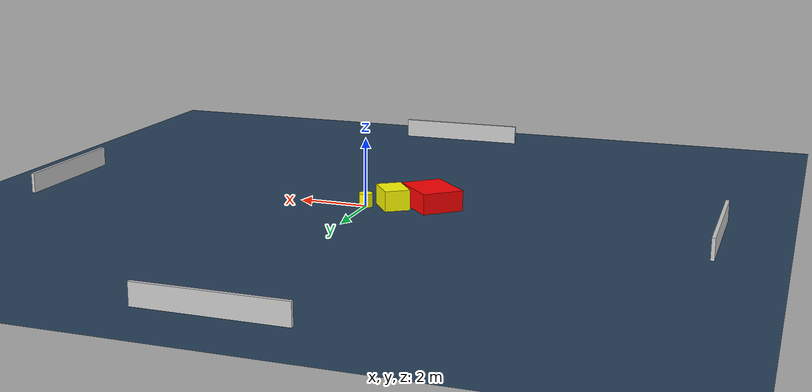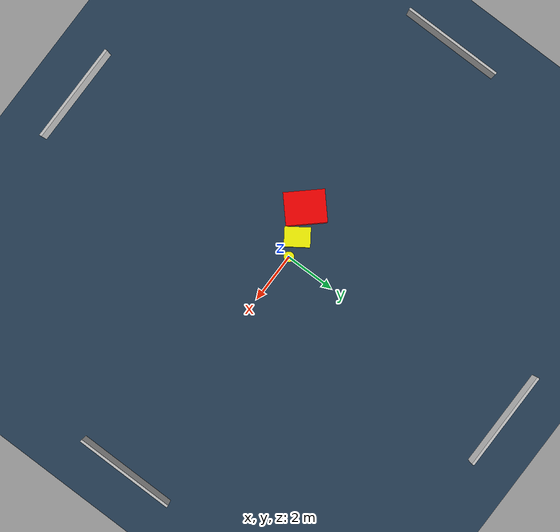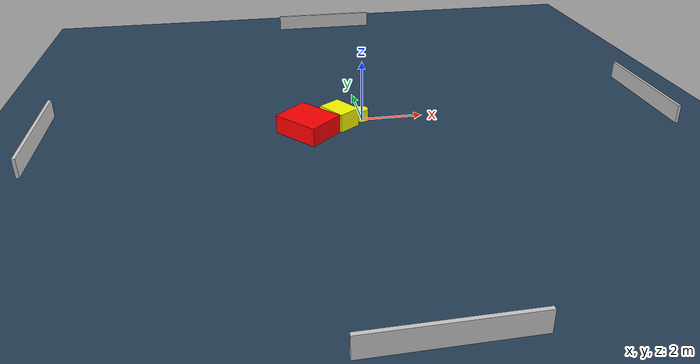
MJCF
<?xml version="1.0" ?>
<mujoco model="generated_environment">
  <option timestep="0.01" integrator="RK4" cone="elliptic"/>
  <default>
    <geom density="1"/>
  </default>
  <asset>
    <texture builtin="gradient" height="3072" name="skybox" rgb1="0.3 0.5 0.7" rgb2="0 0 0" type="skybox" width="512"/>
    <texture builtin="checker" height="300" name="groundplane" rgb1="0.2 0.3 0.4" rgb2="0.1 0.2 0.3" type="2d" width="300"/>
    <material name="groundplane" reflectance="0.2" texrepeat="5 5" texture="groundplane"/>
  </asset>
  <worldbody>
    <light dir="0 0 -1" directional="true" pos="0 0 1.5"/>
    <geom condim="3" friction="0.5 0.005 0.001" material="groundplane" name="floor" pos="0 0 0" size="0 0 0.05" type="plane"/>
    <body name="walls">
      <geom name="wall_1" condim="4" pos="-10.0 0.0 0.3" rgba="0.800000011920929 0.800000011920929 0.800000011920929 1.0" size="0.05 2.0 0.3" type="box"/>
      <geom name="wall_2" condim="4" pos="10.0 0.0 0.3" rgba="0.800000011920929 0.800000011920929 0.800000011920929 1.0" size="0.05 2.0 0.3" type="box"/>
      <geom name="wall_3" condim="4" pos="0.0 -10.0 0.3" rgba="0.800000011920929 0.800000011920929 0.800000011920929 1.0" size="2.0 0.05 0.3" type="box"/>
      <geom name="wall_4" condim="4" pos="0.0 10.0 0.3" rgba="0.800000011920929 0.800000011920929 0.800000011920929 1.0" size="2.0 0.05 0.3" type="box"/>
    </body>
    <body name="robot">
      <joint name="joint_x" type="slide" pos="0 0 0" axis="1 0 0"/>
      <joint name="joint_y" type="slide" pos="0 0 0" axis="0 1 0"/>
      <geom name="robot" type="cylinder" pos="0.0 0.0 0.2" size="0.2 0.2 0.0" mass="5.0" friction="1.0 0.005 0.0001" condim="4" rgba="1.0 1.0 0.0 1.0"/>
    </body>
    <body name="obstacle_1_movable">
      <geom name="obstacle_1_movable" condim="4" pos="-0.7646227913708848 -0.19610452844583742 0.3" euler="0 0 34.77040614382562" friction="0.0 0.005 0.001" rgba="1.0 1.0 0.0 1.0" size="0.3727188076519944 0.4913386778719782 0.3" type="box" mass="0.1"/>
      <joint type="free"/>
    </body>
    <body name="obstacle_2_static">
      <geom name="obstacle_2_static" condim="4" pos="-1.8120905933967884 -0.6236054404546061 0.3" euler="0 0 132.23586324388273" friction="0.0 0.005 0.001" rgba="1.0 0.0 0.0 1.0" size="0.7790260318131794 0.6193178563717611 0.3" type="box"/>
    </body>
  </worldbody>
  <actuator>
    <motor name="actuator_x" joint="joint_x" gear="1" ctrlrange="-1 1"/>
    <motor name="actuator_y" joint="joint_y" gear="1" ctrlrange="-1 1"/>
  </actuator>
</mujoco>
